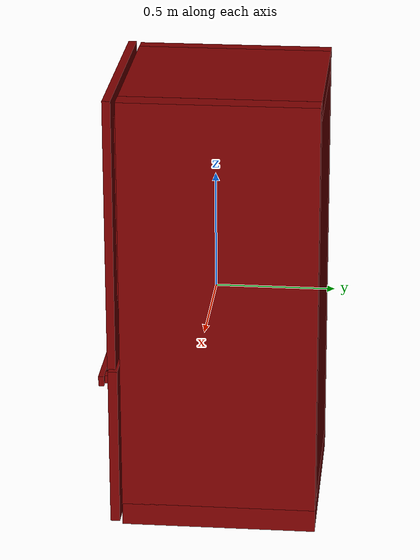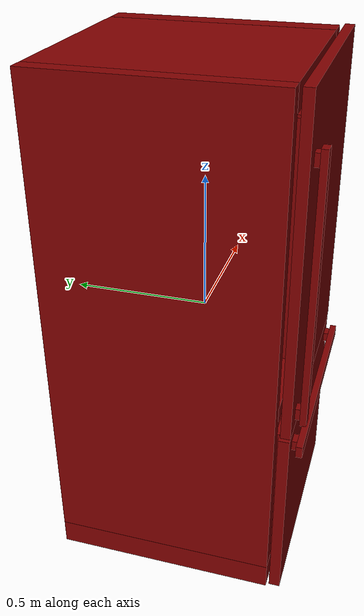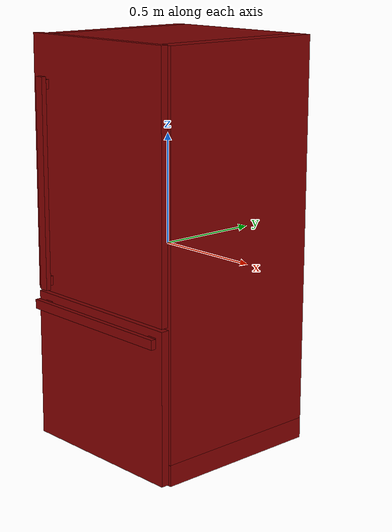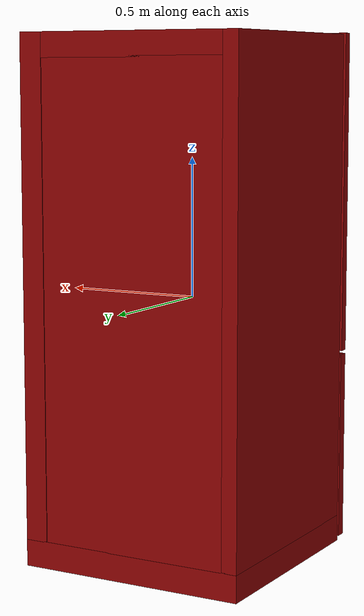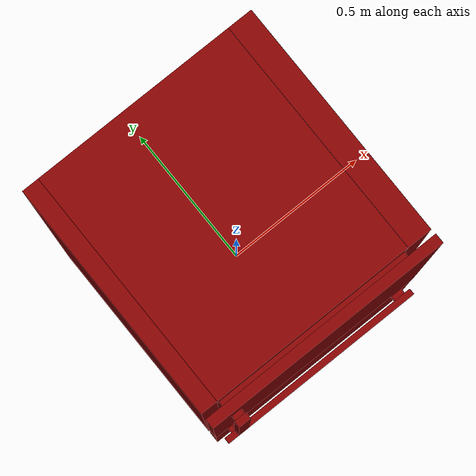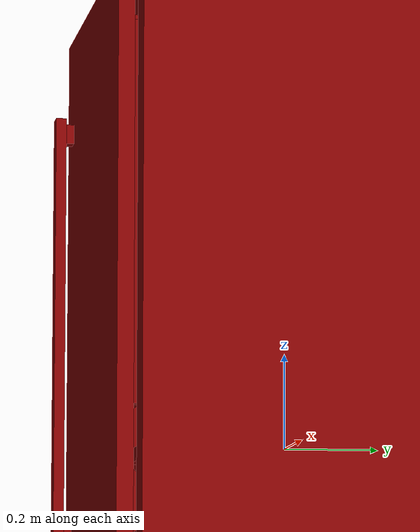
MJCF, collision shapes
<mujoco model="model">
  <compiler angle="radian"/>
  <asset>
    <mesh file="visuals/Body001.obj" name="Body001_vis"/>
    <mesh file="visuals/Body001_Clear.obj" name="Body001_Clear_vis"/>
    <mesh file="visuals/Door001.obj" name="Door001_vis"/>
    <mesh file="visuals/Door001_Clear.obj" name="Door001_Clear_vis"/>
    <mesh file="visuals/Drawer001.obj" name="Drawer001_vis"/>
    <mesh file="visuals/Drawer002.obj" name="Drawer002_vis"/>
    <mesh file="visuals/Drawer003.obj" name="Drawer003_vis"/>
    <texture file="visuals/T_BC001.png" name="Body001_material" type="2d"/>
    <material name="Body001_material" rgba="1 1 1 1.0" texture="Body001_material" shininess="0.4472135901451111" specular="1"/>
    <texture file="visuals/T_BC001.png" name="Body001_Clear_material" type="2d"/>
    <material name="Body001_Clear_material" rgba="1 1 1 0.4411303400993347" texture="Body001_Clear_material" shininess="0.5" specular="0.3103448502657381"/>
    <texture file="visuals/T_BC001.png" name="Door001_material" type="2d"/>
    <material name="Door001_material" rgba="1 1 1 1.0" texture="Door001_material" shininess="0.4472135901451111" specular="1"/>
    <texture file="visuals/T_BC001.png" name="Door001_Clear_material" type="2d"/>
    <material name="Door001_Clear_material" rgba="1 1 1 0.4411303400993347" texture="Door001_Clear_material" shininess="0.5" specular="0.3103448502657381"/>
    <texture file="visuals/T_BC001.png" name="Drawer001_material" type="2d"/>
    <material name="Drawer001_material" rgba="1 1 1 1.0" texture="Drawer001_material" shininess="0.4472135901451111" specular="0.3103448502657381"/>
    <texture file="visuals/T_BC001.png" name="Drawer002_material" type="2d"/>
    <material name="Drawer002_material" rgba="1 1 1 1.0" texture="Drawer002_material" shininess="0.4472135901451111" specular="0.3103448502657381"/>
    <texture file="visuals/T_BC001.png" name="Drawer003_material" type="2d"/>
    <material name="Drawer003_material" rgba="1 1 1 1.0" texture="Drawer003_material" shininess="0.4472135901451111" specular="1"/>
  </asset>
  <default>
    <default class="visual">
      <geom conaffinity="0" contype="0" group="1" type="mesh"/>
    </default>
    <default class="collision">
      <geom group="0" rgba="0.5 0 0 0.5"/>
    </default>
    <default class="spawn">
      <geom group="0" rgba="1 1 1 0.5" contype="0" conaffinity="0"/>
      <site group="0" rgba="1 1 1 0.5"/>
    </default>
    <default class="region">
      <geom group="1" conaffinity="0" contype="0" rgba="0 1 0 0"/>
    </default>
  </default>
  <worldbody>
    <body>
      <body name="object">
        <geom mesh="Body001_vis" type="mesh" solimp="0.998 0.998 0.001" solref="0.001 1" density="100" friction="0.95 0.3 0.1" class="visual" material="Body001_material"/>
        <geom class="collision" type="box" pos="-0.00028220959939062595 0.046065088361501694 -0.8849540948867798" size="0.4174952507019043 0.40577802062034607 0.048721931874752045" quat="1.0 0.0 0.0 0.0"/>
        <geom class="collision" type="box" pos="-0.3892420828342438 0.0463176891207695 0.0472198948264122" size="0.0285353846848011 0.4055253565311432 0.8854473829269409" quat="1.0 0.0 0.0 0.0"/>
        <geom class="collision" type="box" pos="-0.014195600524544716 0.04606311395764351 0.8895912766456604" size="0.34721803665161133 0.40577998757362366 0.043075814843177795" quat="1.0 0.0 0.0 0.0"/>
        <geom class="collision" type="box" pos="0.3752589225769043 0.04562413692474365 0.04722072184085846" size="0.04195408895611763 0.40621891617774963 0.8854464292526245" quat="1.0 0.0 0.0 0.0"/>
        <geom class="collision" type="box" pos="-0.014991133473813534 0.32848867774009705 0.006801291834563017" size="0.3463194668292999 0.12335442006587982 0.8450056314468384" quat="1.0 0.0 0.0 0.0"/>
        <geom class="collision" type="box" pos="-0.014195600524544716 -0.02551545947790146 -0.22356769442558289" size="0.34721803665161133 0.32394760847091675 0.030765503644943237" quat="1.0 0.0 0.0 0.0"/>
        <body name="Body001_Clear">
          <geom mesh="Body001_Clear_vis" type="mesh" solimp="0.998 0.998 0.001" solref="0.001 1" density="100" friction="0.95 0.3 0.1" class="visual" material="Body001_Clear_material"/>
          <geom class="collision" type="box" pos="-0.009869547560811043 -0.040154919028282166 0.5256437063217163" size="0.34337595105171204 0.2510439455509186 0.0007182847475633025" quat="1.0 0.0 0.0 0.0"/>
          <geom class="collision" type="box" pos="-0.009583763778209686 -0.05967281386256218 0.21403063833713531" size="0.34366172552108765 0.26773449778556824 0.0007899237680248916" quat="1.0 0.0 0.0 0.0"/>
        </body>
        <body name="Door001">
          <joint axis="0.0 0.0 1.0" pos="0.398270845413208 -0.39148035645484924 0.357952356338501" limited="true" name="Door001_joint" range="0.0 1.5707963267948966" type="hinge" damping="1" frictionloss="1" armature=".01" stiffness="0.05"/>
          <geom mesh="Door001_vis" type="mesh" solimp="0.998 0.998 0.001" solref="0.001 1" density="100" friction="0.95 0.3 0.1" class="visual" material="Door001_material"/>
          <geom class="collision" type="box" pos="0.0006382146384567022 -0.3950631320476532 0.3596794009208679" size="0.4184156656265259 0.01681710220873356 0.5777788162231445" quat="1.0 0.0 0.0 0.0"/>
          <geom class="collision" type="box" pos="-0.3326978087425232 -0.4237545430660248 0.7210708856582642" size="0.017770806327462196 0.01319112442433834 0.02116990089416504" quat="1.0 0.0 0.0 0.0"/>
          <geom class="collision" type="box" pos="-0.3332245945930481 -0.44065728783607483 0.2762830853462219" size="0.021486591547727585 0.01143124233931303 0.4793464243412018" quat="1.0 0.0 0.0 0.0"/>
          <geom class="collision" type="box" pos="-0.3326978087425232 -0.4237545430660248 -0.1627090871334076" size="0.017770806327462196 0.01319084595888853 0.02116990089416504" quat="1.0 0.0 0.0 0.0"/>
          <geom class="collision" type="box" pos="-0.01318422518670559 -0.35715028643608093 0.840620756149292" size="0.34219425916671753 0.023262569680809975 0.004276500083506107" quat="1.0 0.0 0.0 0.0"/>
          <geom class="collision" type="box" pos="0.3195115029811859 -0.35715028643608093 0.4454904794692993" size="0.009498503990471363 0.023262569680809975 0.39117616415023804" quat="1.0 0.0 0.0 0.0"/>
          <geom class="collision" type="box" pos="-0.3373781442642212 -0.35715028643608093 0.4454904794692993" size="0.016009612008929253 0.023262571543455124 0.39117616415023804" quat="1.0 0.0 0.0 0.0"/>
          <body name="Door001_Clear">
            <geom mesh="Door001_Clear_vis" type="mesh" solimp="0.998 0.998 0.001" solref="0.001 1" density="100" friction="0.95 0.3 0.1" class="visual" material="Door001_Clear_material"/>
            <geom class="collision" type="box" pos="-0.3035118579864502 -0.3609536588191986 0.1288968026638031" size="0.003228553105145693 0.011789285577833652 0.059241604059934616" quat="1.0 0.0 0.0 0.0"/>
            <geom class="collision" type="box" pos="-0.0008189299842342734 -0.3415113389492035 0.13031218945980072" size="0.301035076379776 0.0039555649273097515 0.06320180743932724" quat="1.0 0.0 0.0 0.0"/>
            <geom class="collision" type="box" pos="0.30434656143188477 -0.35811498761177063 0.12843604385852814" size="0.0020166372414678335 0.020167620852589607 0.058914560824632645" quat="1.0 0.0 0.0 0.0"/>
            <geom class="collision" type="box" pos="-0.0010958004277199507 -0.3632794916629791 0.0617678165435791" size="0.301297664642334 0.014990507625043392 0.004100287798792124" quat="1.0 0.0 0.0 0.0"/>
            <geom class="collision" type="box" pos="0.0006768889725208282 -0.3464416563510895 0.3771534860134125" size="0.2995249629020691 0.014958427287638187 0.0021699205972254276" quat="1.0 0.0 0.0 0.0"/>
            <geom class="collision" type="box" pos="0.3041929602622986 -0.3431452214717865 0.41270139813423157" size="0.002170219086110592 0.012792040593922138 0.029203588142991066" quat="1.0 0.0 0.0 0.0"/>
            <geom class="collision" type="box" pos="0.00023628940107300878 -0.3249150812625885 0.4143744111061096" size="0.2999781370162964 0.0050478107295930386 0.027853142470121384" quat="1.0 0.0 0.0 0.0"/>
            <geom class="collision" type="box" pos="-0.3053753972053528 -0.3468959629535675 0.41161346435546875" size="0.0013649907195940614 0.01509031094610691 0.028536992147564888" quat="1.0 0.0 0.0 0.0"/>
            <geom class="collision" type="box" pos="-0.3035118579864502 -0.34567341208457947 0.5358172655105591" size="0.0032285209745168686 0.014797506853938103 0.029959529638290405" quat="1.0 0.0 0.0 0.0"/>
            <geom class="collision" type="box" pos="0.0007004301296547055 -0.3274819552898407 0.5373093485832214" size="0.29951298236846924 0.0037087812088429928 0.029826143756508827" quat="1.0 0.0 0.0 0.0"/>
            <geom class="collision" type="box" pos="0.30440574884414673 -0.3509902060031891 0.5287048816680908" size="0.0019574060570448637 0.011457794345915318 0.03615258261561394" quat="1.0 0.0 0.0 0.0"/>
            <geom class="collision" type="box" pos="0.0013456159504130483 -0.35078075528144836 0.5021404027938843" size="0.2988562285900116 0.014763807877898216 0.0041002850048244" quat="1.0 0.0 0.0 0.0"/>
            <geom class="collision" type="box" pos="-0.00013862716150470078 -0.33811357617378235 0.6366299390792847" size="0.300340473651886 0.022642824798822403 0.0015565496869385242" quat="1.0 0.0 0.0 0.0"/>
            <geom class="collision" type="box" pos="0.3044595718383789 -0.34080877900123596 0.6812611222267151" size="0.0019036070443689823 0.019667141139507294 0.041286613792181015" quat="1.0 0.0 0.0 0.0"/>
            <geom class="collision" type="box" pos="-0.0001229922636412084 -0.31280675530433655 0.6845166683197021" size="0.3003346920013428 0.004460365977138281 0.03835388273000717" quat="1.0 0.0 0.0 0.0"/>
            <geom class="collision" type="box" pos="-0.3035118579864502 -0.3385394513607025 0.6774614453315735" size="0.003228538203984499 0.017397744581103325 0.04565775394439697" quat="1.0 0.0 0.0 0.0"/>
          </body>
        </body>
        <body name="Drawer001">
          <joint axis="0.0 -1.0 0.0" pos="-0.01722750999033451 -0.06104498356580734 0.10283555090427399" limited="true" name="Drawer001_joint" range="0.0 0.4" type="slide" damping="1" frictionloss="1" armature=".01" stiffness="0.05"/>
          <geom mesh="Drawer001_vis" type="mesh" solimp="0.998 0.998 0.001" solref="0.001 1" density="100" friction="0.95 0.3 0.1" class="visual" material="Drawer001_material"/>
          <geom class="collision" type="box" pos="-0.3300918936729431 -0.03274644911289215 0.10766411572694778" size="0.012271959334611893 0.21677258610725403 0.08815472573041916" quat="1.0 0.0 0.0 0.0"/>
          <geom class="collision" type="box" pos="0.2944066524505615 -0.03485676646232605 0.10750240832567215" size="0.012768152169883251 0.2197364717721939 0.08799302577972412" quat="1.0 0.0 0.0 0.0"/>
          <geom class="collision" type="box" pos="-0.016805533319711685 0.19075459241867065 0.10831139236688614" size="0.31907016038894653 0.0028994481544941664 0.08880159258842468" quat="1.0 0.0 0.0 0.0"/>
          <geom class="collision" type="box" pos="-0.019166722893714905 -0.2574569284915924 0.10762117058038712" size="0.3196590542793274 0.0070279669016599655 0.0881117731332779" quat="1.0 0.0 0.0 0.0"/>
          <geom class="collision" type="box" pos="-0.020612698048353195 -0.033869437873363495 0.010581914335489273" size="0.29958799481391907 0.22204646468162537 0.0024576352443546057" quat="1.0 0.0 0.0 0.0"/>
          <geom class="collision" type="box" pos="0.1829824298620224 -0.27968233823776245 0.18143442273139954" size="0.11831755191087723 0.008652029559016228 0.014979681000113487" quat="0.9945970773696899 0.0 0.0 0.10381060838699341"/>
          <geom class="collision" type="box" pos="-0.22086118161678314 -0.2785322666168213 0.18143442273139954" size="0.11387142539024353 0.008652029559016228 0.014979681000113487" quat="0.99354088306427 0.0 -0.0 -0.11347470432519913"/>
          <geom class="collision" type="box" pos="-0.02271162159740925 -0.3040718138217926 0.18143442273139954" size="0.09203242510557175 0.008652029559016228 0.014979681000113487" quat="1.0 0.0 0.0 0.0"/>
        </body>
        <body name="Drawer002">
          <joint axis="0.0 -1.0 0.0" pos="-0.01722750999033451 -0.06281699240207672 -0.09212801605463028" limited="true" name="Drawer002_joint" range="0.0 0.4" type="slide" damping="1" frictionloss="1" armature=".01" stiffness="0.05"/>
          <geom mesh="Drawer002_vis" type="mesh" solimp="0.998 0.998 0.001" solref="0.001 1" density="100" friction="0.95 0.3 0.1" class="visual" material="Drawer002_material"/>
          <geom class="collision" type="box" pos="-0.3300918936729431 -0.03469010442495346 -0.08874400705099106" size="0.01227185782045126 0.2160429060459137 0.08815417438745499" quat="1.0 0.0 0.0 0.0"/>
          <geom class="collision" type="box" pos="0.2944066524505615 -0.03688087314367294 -0.0889057144522667" size="0.012768056243658066 0.21911968290805817 0.08799250423908234" quat="1.0 0.0 0.0 0.0"/>
          <geom class="collision" type="box" pos="-0.016805533319711685 0.18833434581756592 -0.0880967304110527" size="0.3190721869468689 0.0030099789146333933 0.08880262821912766" quat="1.0 0.0 0.0 0.0"/>
          <geom class="collision" type="box" pos="-0.019166722893714905 -0.25897011160850525 -0.08878696709871292" size="0.31965428590774536 0.007295942399650812 0.0881110280752182" quat="1.0 0.0 0.0 0.0"/>
          <geom class="collision" type="box" pos="-0.020612698048353195 -0.035855911672115326 -0.18582621216773987" size="0.2995855212211609 0.22151002287864685 0.0024576119612902403" quat="1.0 0.0 0.0 0.0"/>
          <geom class="collision" type="box" pos="-0.021015210077166557 -0.30426040291786194 -0.012694921344518661" size="0.09203242510557175 0.008652027696371078 0.014979681000113487" quat="1.0 0.0 0.0 0.0"/>
          <geom class="collision" type="box" pos="-0.21916477382183075 -0.27872082591056824 -0.012694921344518661" size="0.11387142539024353 0.008652029559016228 0.014979681000113487" quat="0.99354088306427 0.0 -0.0 -0.11347470432519913"/>
          <geom class="collision" type="box" pos="0.1846788376569748 -0.2798709273338318 -0.012694921344518661" size="0.11831755191087723 0.008652027696371078 0.014979681000113487" quat="0.9945970773696899 0.0 0.0 0.10381060838699341"/>
        </body>
        <body name="Drawer003">
          <joint axis="0.0 -1.0 0.0" pos="8.940696716308594e-08 -0.1895536482334137 -0.5760611891746521" limited="true" name="Drawer003_joint" range="0.0 0.4" type="slide" damping="1" frictionloss="1" armature=".01" stiffness="0.05"/>
          <geom mesh="Drawer003_vis" type="mesh" solimp="0.998 0.998 0.001" solref="0.001 1" density="100" friction="0.95 0.3 0.1" class="visual" material="Drawer003_material"/>
          <geom class="collision" type="box" pos="0.0003351327031850815 -0.3912123739719391 -0.5759356617927551" size="0.4179703891277313 0.019580064341425896 0.34442299604415894" quat="1.0 0.0 0.0 0.0"/>
          <geom class="collision" type="box" pos="-0.3456881642341614 -0.423907071352005 -0.2831193506717682" size="0.02116990275681019 0.013190827332437038 0.017770808190107346" quat="1.0 0.0 0.0 0.0"/>
          <geom class="collision" type="box" pos="0.00203077495098114 -0.44080981612205505 -0.2825925648212433" size="0.39828863739967346 0.01143124233931303 0.02148660458624363" quat="1.0 0.0 0.0 0.0"/>
          <geom class="collision" type="box" pos="0.3575775623321533 -0.423907071352005 -0.2831193506717682" size="0.02116990275681019 0.013190790079534054 0.017770808190107346" quat="1.0 0.0 0.0 0.0"/>
          <geom class="collision" type="box" pos="0.3081456422805786 -0.08935493230819702 -0.6066580414772034" size="0.012117437086999416 0.26494473218917847 0.22165796160697937" quat="1.0 0.0 0.0 0.0"/>
          <geom class="collision" type="box" pos="-0.32881656289100647 -0.08935493230819702 -0.6066580414772034" size="0.012117435224354267 0.26494473218917847 0.22165796160697937" quat="1.0 0.0 0.0 0.0"/>
          <geom class="collision" type="box" pos="-0.009681074880063534 0.16568218171596527 -0.6066580414772034" size="0.306090384721756 0.009798376820981503 0.22165796160697937" quat="1.0 0.0 0.0 0.0"/>
          <geom class="collision" type="box" pos="-0.009681080467998981 -0.09938091784715652 -0.8112134337425232" size="0.306090384721756 0.2548059821128845 0.017102576792240143" quat="1.0 0.0 0.0 0.0"/>
          <geom class="collision" type="box" pos="-0.013841669075191021 -0.3630203902721405 -0.5440488457679749" size="0.34341034293174744 0.010004036128520966 0.28850358724594116" quat="1.0 0.0 0.0 0.0"/>
        </body>
        <geom class="region" name="reg_main" type="box" pos="1.4901161193847656e-08 0.02136211469769478 -5.960464477539063e-08" size="0.4184049665927887 0.4304814040660858 0.9336766600608826"/>
      </body>
    </body>
  </worldbody>
  <actuator>
    <motor name="Door001_joint_actuator" joint="Door001_joint" gear="50"/>
    <motor name="Drawer001_joint_actuator" joint="Drawer001_joint" gear="50"/>
    <motor name="Drawer002_joint_actuator" joint="Drawer002_joint" gear="50"/>
    <motor name="Drawer003_joint_actuator" joint="Drawer003_joint" gear="50"/>
  </actuator>
</mujoco>
